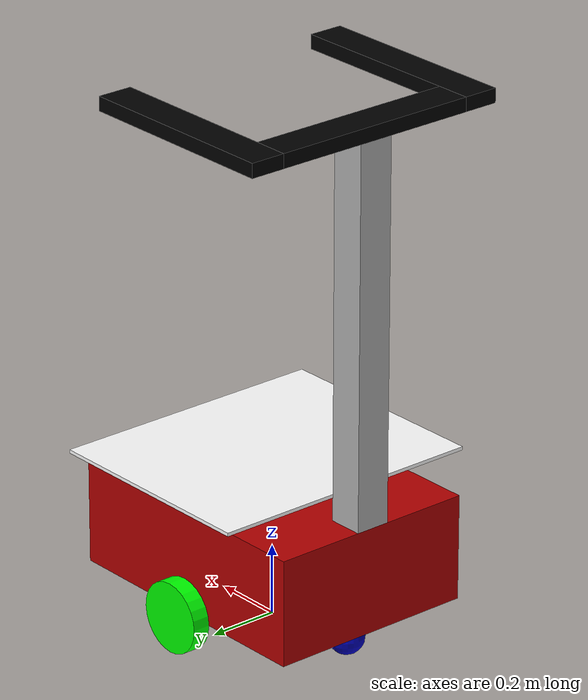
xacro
<?xml version="1.0"?>
<robot name="Krever" xmlns:xacro="http://www.ros.org/wiki/xacro">
    <xacro:include filename="inertia_macro.xacro"/>

    <!--colors-->
    <material name="green">
        <color rgba="0 1 0 1"/>
    </material>

    <material name="blue">
        <color rgba="0 0 0.7 1"/>
    </material>

    <material name="red">
        <color rgba="0.7 0 0 1"/>
    </material>

    <link name="base_footprint"/>

    <!--base chassis-->
    <link name="base_link">
        <visual>
            <geometry>
                <box size="0.8 0.6 0.3"/>
            </geometry>
            <origin xyz="0 0 0.15" rpy="0 0 0"/>
            <material name="red"/>
        </visual>

        <collision>
            <geometry>
                <box size="0.8 0.6 0.3"/>
            </geometry>
            <origin xyz="0 0 0.15" rpy="0 0 0"/>
            <material name="red"/>
        </collision>

        <xacro:inertial_box mass="5.0" x="0.8" y="0.6" z="0.3" origin_xyz="0 0 0.15" origin_rpy="0 0 0"/>
    </link>

    <joint name="base_joint" type="fixed">
        <parent link="base_footprint"/>
        <child link="base_link"/>
        <origin xyz="0 0 0.1" rpy="0 0 0"/>
    </joint>

    <!--lidar-->
    <link name="lidar">
        <visual>
            <geometry>
                <cylinder radius="0.1" length="0.05"/>
            </geometry>
            <origin xyz="0 0 0" rpy="0 0 0"/>
            <material name="blue"/>
        </visual>

        <collision>
            <geometry>
                <cylinder radius="0.1" length="0.05"/>
            </geometry>
            <origin xyz="0 0 0" rpy="0 0 0"/>
            <material name="blue"/>
        </collision>

        <xacro:inertial_cylinder mass="0.1" radius="0.1" length="0.05" origin_xyz="0 0 0" origin_rpy="0 0 0"/>
    </link>

    <joint name="base_lidar_joint" type="fixed">
        <parent link="base_link"/>
        <child link="lidar"/>
        <origin xyz="0 0 0.325" rpy="0 0 0"/>
    </joint>

    <!-- left wheel-->
    <link name="left_wheel">
        <visual>
            <geometry>
                <cylinder radius="0.1" length="0.05"/>
            </geometry>
            <origin xyz="0 0 0" rpy="1.57 0 0"/>
            <material name="green"/>
        </visual>

        <collision>
            <geometry>
                <cylinder radius="0.1" length="0.05"/>
            </geometry>
            <origin xyz="0 0 0" rpy="1.57 0 0"/>
            <material name="green"/>
        </collision>

        <xacro:inertial_cylinder mass="0.1" radius="0.1" length="0.05" origin_xyz="0 0 0" origin_rpy="1.57 0 0"/>
    </link>

    <joint name="base_left_wheel_joint" type="continuous">
        <parent link="base_link"/>
        <child link="left_wheel"/>
        <origin xyz="0 0.325 0" rpy="0 0 0"/>
        <axis xyz="0 1 0"/>
    </joint>

    <!--right wheel-->
    <link name="right_wheel">
        <visual>
            <geometry>
                <cylinder radius="0.1" length="0.05"/>
            </geometry>
            <origin xyz="0 0 0" rpy="1.57 0 0"/>
            <material name="green"/>
        </visual>

        <collision>
            <geometry>
                <cylinder radius="0.1" length="0.05"/>
            </geometry>
            <origin xyz="0 0 0" rpy="1.57 0 0"/>
            <material name="green"/>
        </collision>

        <xacro:inertial_cylinder mass="0.1" radius="0.1" length="0.05" origin_xyz="0 0 0" origin_rpy="1.57 0 0"/>
    </link>

    <joint name="base_right_wheel_joint" type="continuous">
        <parent link="base_link"/>
        <child link="right_wheel"/>
        <origin xyz="0 -0.325 0" rpy="0 0 0"/>
        <axis xyz="0 1 0"/>
    </joint>

    <!-- caster wheel1 -->
    <link name="caster_wheel1">
        <visual>
            <geometry>
                <sphere radius="0.05"/>
            </geometry>
            <origin xyz="0 0 0" rpy="0 0 0"/>
            <material name="blue"/>
        </visual>

        <collision>
            <geometry>
                <sphere radius="0.05"/>
            </geometry>
            <origin xyz="0 0 0" rpy="0 0 0"/>
            <material name="blue"/>
        </collision>

        <xacro:inertial_sphere mass="0.08" radius="0.05" origin_xyz="0 0 0" origin_rpy="0 0 0"/>
    </link>

    <joint name="body_caster_wheel_joint1" type="fixed">
        <parent link="base_link"/>
        <child link="caster_wheel1"/>
        <origin xyz="0.3 0 -0.05" rpy="0 0 0"/>
    </joint>

    <!-- caster wheel2 -->
    <link name="caster_wheel2">
        <visual>
            <geometry>
                <sphere radius="0.05"/>
            </geometry>
            <origin xyz="0 0 0" rpy="0 0 0"/>
            <material name="blue"/>
        </visual>

        <collision>
            <geometry>
                <sphere radius="0.05"/>
            </geometry>
            <origin xyz="0 0 0" rpy="0 0 0"/>
            <material name="blue"/>
        </collision>

        <xacro:inertial_sphere mass="0.08" radius="0.05" origin_xyz="0 0 0" origin_rpy="0 0 0"/>
    </link>

    <joint name="body_caster_wheel_joint2" type="fixed">
        <parent link="base_link"/>
        <child link="caster_wheel2"/>
        <origin xyz="-0.3 0 -0.05" rpy="0 0 0"/>
    </joint>

    <!--supporting rod-->
    <link name="support_rod">
        <visual>
            <geometry>
                <box size="0.1 0.1 1.07" />
            </geometry>
            <material name="LightGrey">
                <color rgba="0.7 0.7 0.7 1.0"/>
            </material>
        </visual>
        <collision>
            <geometry>
                <box size="0.1 0.1 1.07" />
            </geometry>
        </collision>
        <xacro:inertial_box mass="1.0" x="0.1" y="0.1" z="1.07" origin_xyz="0 0 0" origin_rpy="0 0 0"/>
    </link>

    <joint name="base_support_joint" type="fixed">
        <origin xyz="-0.35 0 0.835" rpy="0.0 0.0 0.0"/>
        <parent link="base_link"/>
        <child link="support_rod"/>
    </joint>

    <link name="u1">
        <visual>
            <geometry>
                <box size="0.6 0.1 0.04" />
            </geometry>
            <material name="black">
                <color rgba="0 0 0 1"/>
            </material>
        </visual>
        <collision>
            <geometry>
                <box size="0.6 0.1 0.04" />
            </geometry>
        </collision>
        <xacro:inertial_box mass="0.3" x="0.6" y="0.1" z="0.04" origin_xyz="0 0 0" origin_rpy="0 0 0"/>
    </link>

    <joint name="u1_joint" type="fixed">
        <origin xyz="0 0 0.555" rpy="0.0 0.0 1.57"/>
        <parent link="support_rod"/>
        <child link="u1"/>
    </joint>

    <link name="u2">
        <visual>
            <geometry>
                <box size="0.6 0.1 0.04" />
            </geometry>
            <material name="black">
                <color rgba="0 0 0 1"/>
            </material>
        </visual>
        <collision>
            <geometry>
                <box size="0.6 0.1 0.04" />
            </geometry>
        </collision>
        <xacro:inertial_box mass="0.3" x="0.6" y="0.1" z="0.04" origin_xyz="0 0 0" origin_rpy="0 0 0"/>
    </link>

    <joint name="u2_joint" type="fixed">
        <origin xyz="0.25 0.35 0.555" rpy="0.0 0.0 0"/>
        <parent link="support_rod"/>
        <child link="u2"/>
    </joint>

    <link name="u3">
        <visual>
            <geometry>
                <box size="0.6 0.1 0.04" />
            </geometry>
            <material name="black">
                <color rgba="0 0 0 1"/>
            </material>
        </visual>
        <collision>
            <geometry>
                <box size="0.6 0.1 0.04" />
            </geometry>
        </collision>
        <xacro:inertial_box mass="0.3" x="0.6" y="0.1" z="0.04" origin_xyz="0 0 0" origin_rpy="0 0 0"/>
    </link>

    <joint name="u3_joint" type="fixed">
        <origin xyz="0.25 -0.35 0.555" rpy="0.0 0.0 0"/>
        <parent link="support_rod"/>
        <child link="u3"/>
    </joint>

    <!--tray-->
    <link name="tray">
        <visual>
            <origin xyz="0.0 0.0 0.0" rpy="0.0 0.0 0.0"/>
            <geometry>
                <box size="0.65 0.8 0.01"/>
            </geometry>
            <material name="white">
                <color rgba="1.0 1.0 1.0 1.0"/>
            </material>
        </visual>
        <collision>
            <origin xyz="0.0 0.0 0.0" rpy="0.0 0.0 0.0"/>
            <geometry>
                <box size="0.65 0.8 0.01"/>
            </geometry>
        </collision>
        <xacro:inertial_box mass="0.5" x="0.65" y="0.8" z="0.01" origin_xyz="0 0 0" origin_rpy="0 0 0"/>
    </link>

    <joint name="tray_joint" type="fixed">
        <origin xyz="0.375 0.0 -0.465" rpy="0.0 0.0 0.0"/>
        <parent link="support_rod"/>
        <child link="tray"/>
    </joint>

</robot>

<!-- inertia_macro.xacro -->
<robot xmlns:xacro="http://www.ros.org/wiki/xacro">

    <!-- Macro for calculating the inertial properties of a sphere -->
    <xacro:macro name="inertial_sphere" params="mass radius origin_xyz:='0 0 0' origin_rpy:='0 0 0'">
        <inertial>
            <!-- Origin is optional, defaults to 0,0,0 -->
            <origin xyz="${origin_xyz}" rpy="${origin_rpy}"/>
            <mass value="${mass}" />
            <inertia ixx="${(2/5) * mass * (radius*radius)}" ixy="0.0" ixz="0.0"
                    iyy="${(2/5) * mass * (radius*radius)}" iyz="0.0"
                    izz="${(2/5) * mass * (radius*radius)}" />
        </inertial>
    </xacro:macro>

    <!-- Macro for calculating the inertial properties of a box -->
    <xacro:macro name="inertial_box" params="mass x y z origin_xyz:='0 0 0' origin_rpy:='0 0 0'">
        <inertial>
            <origin xyz="${origin_xyz}" rpy="${origin_rpy}"/>
            <mass value="${mass}" />
            <inertia ixx="${(1/12) * mass * (y*y + z*z)}" ixy="0.0" ixz="0.0"
                    iyy="${(1/12) * mass * (x*x + z*z)}" iyz="0.0"
                    izz="${(1/12) * mass * (x*x + y*y)}" />
        </inertial>
    </xacro:macro>

    <!-- Macro for calculating the inertial properties of a cylinder -->
    <xacro:macro name="inertial_cylinder" params="mass radius length origin_xyz:='0 0 0' origin_rpy:='0 0 0'">
        <inertial>
            <origin xyz="${origin_xyz}" rpy="${origin_rpy}"/>
            <mass value="${mass}" />
            <inertia ixx="${(1/12) * mass * (3*radius*radius + length*length)}" ixy="0.0" ixz="0.0"
                    iyy="${(1/12) * mass * (3*radius*radius + length*length)}" iyz="0.0"
                    izz="${(1/2) * mass * (radius*radius)}" />
        </inertial>
    </xacro:macro>

</robot>
